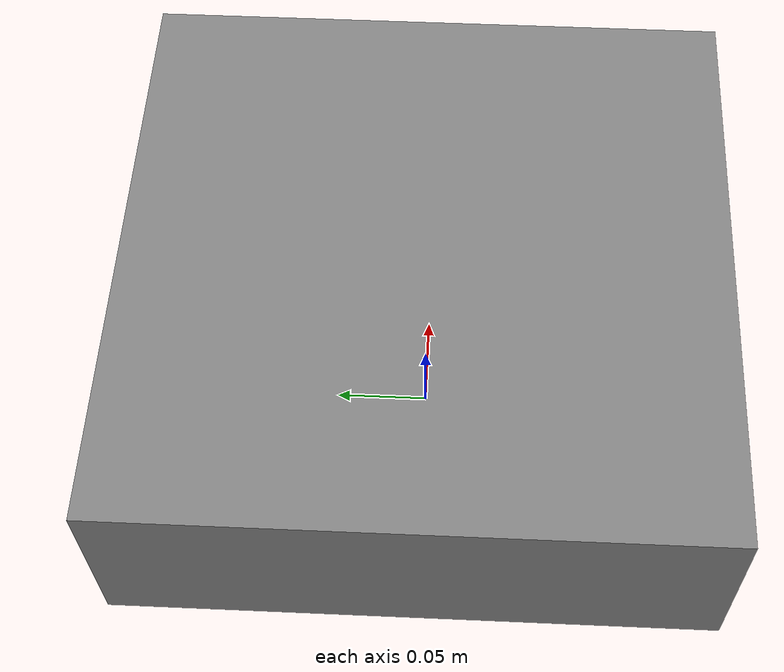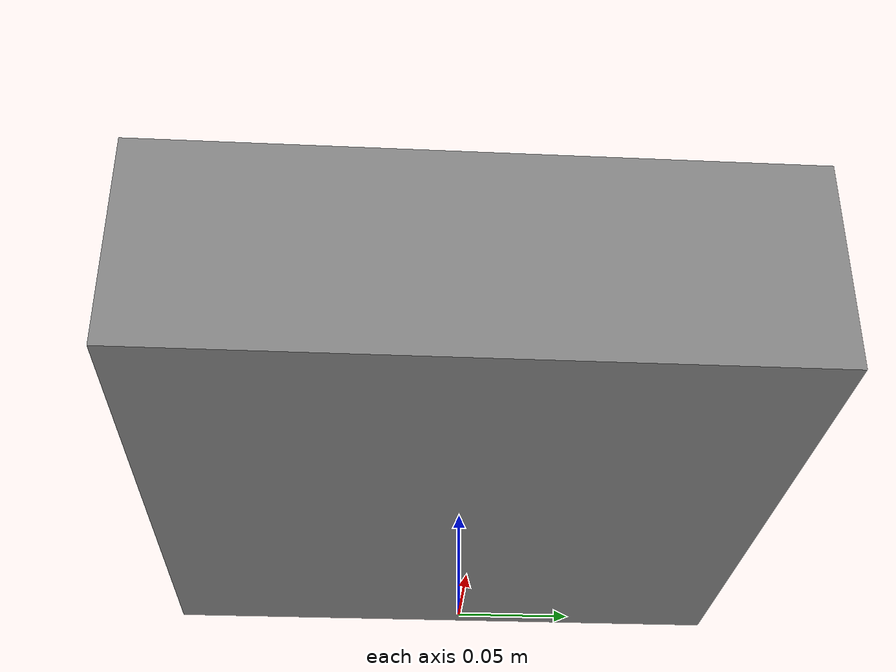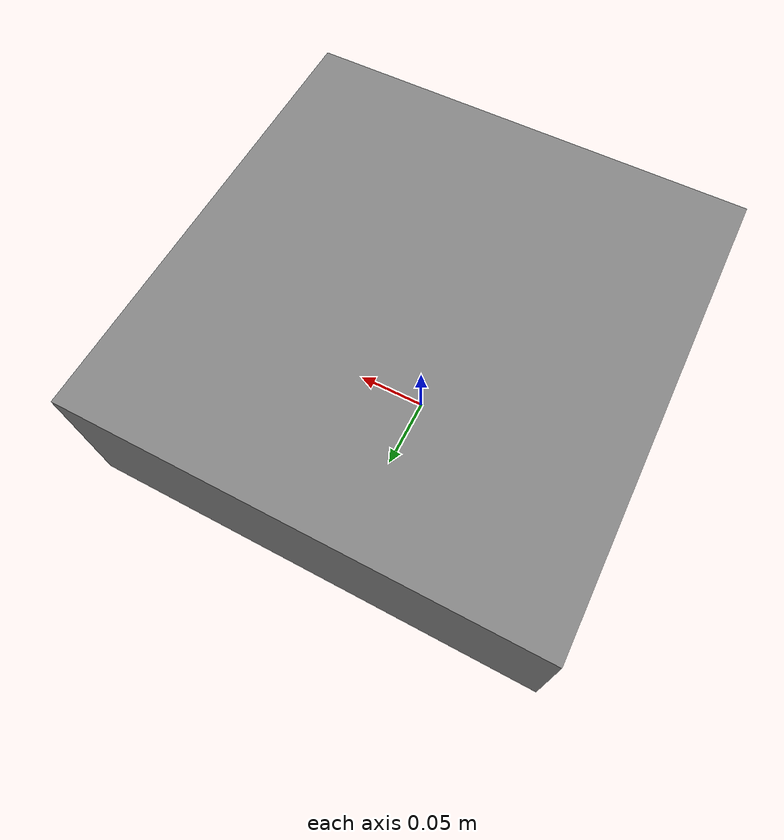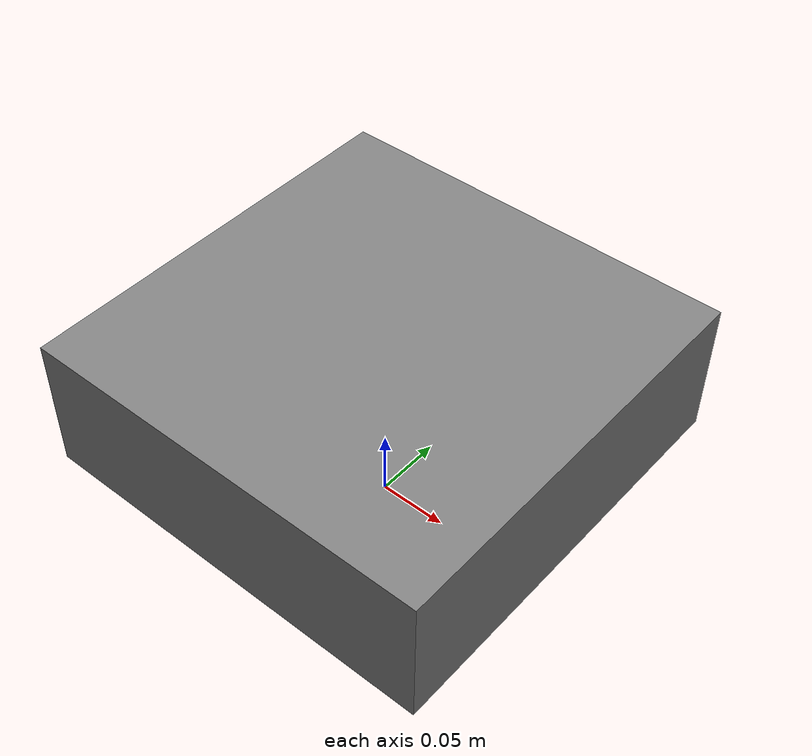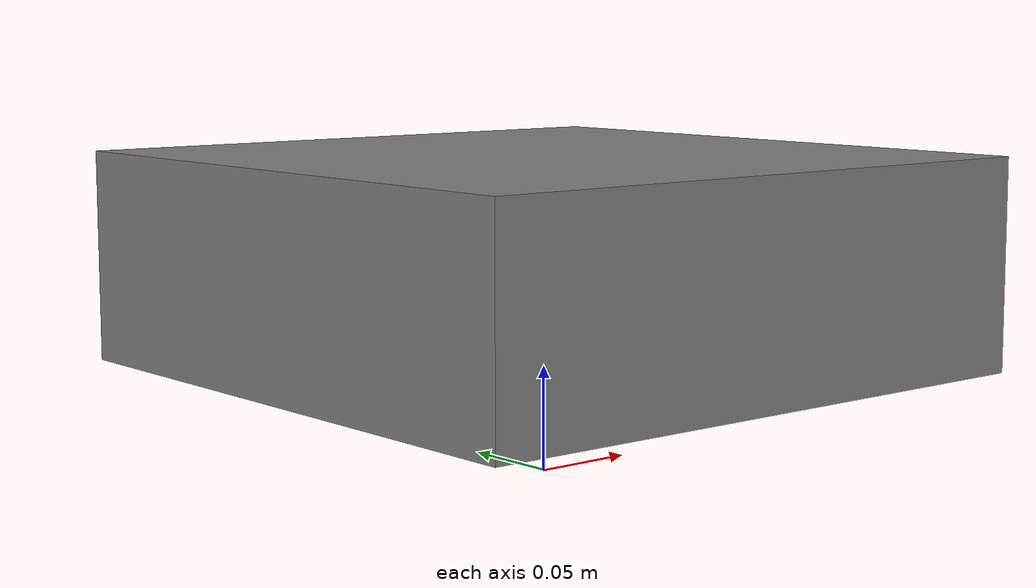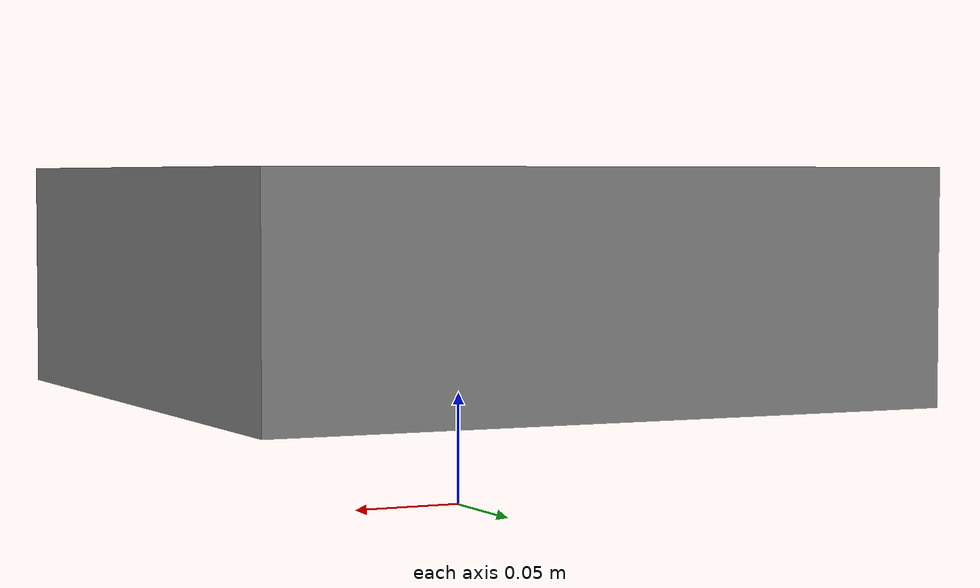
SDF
<?xml version="1.0" ?>
<sdf version="1.9">

  <sensor name="imu_sensor" type="imu">
    <!--
      Basic sensor settings
    -->
    <always_on>true</always_on>
    <update_rate>100</update_rate>  <!-- 100 Hz typical for IMU -->
    <visualize>false</visualize>
    <topic>imu</topic>

    <imu>
      <orientation_reference_frame>
        <localization>CUSTOM</localization>
        <custom_rpy>0 0 0</custom_rpy>
        <grav_dir_x>0</grav_dir_x>
        <grav_dir_y>0</grav_dir_y>
        <grav_dir_z>-1</grav_dir_z>
      </orientation_reference_frame>

      <linear_acceleration>
        <x>
          <noise type="gaussian">
            <mean>0.0</mean>
            <stddev>0.05</stddev>  <!-- m/s² -->
            <!--
              bias_mean: Constant offset (sensor calibration error)
              bias_stddev: Drift in bias over time (Allan variance)
            -->
            <bias_mean>0.0001</bias_mean>
            <bias_stddev>0.0001</bias_stddev>
          </noise>
        </x>
        <y>
          <noise type="gaussian">
            <mean>0.0</mean>
            <stddev>0.05</stddev>
            <bias_mean>0.0001</bias_mean>
            <bias_stddev>0.0001</bias_stddev>
          </noise>
        </y>
        <z>
          <noise type="gaussian">
            <mean>0.0</mean>
            <stddev>0.05</stddev>
            <bias_mean>0.0001</bias_mean>
            <bias_stddev>0.0001</bias_stddev>
          </noise>
        </z>
      </linear_acceleration>

      <angular_velocity>
        <x>
          <noise type="gaussian">
            <mean>0.0</mean>
            <stddev>0.01</stddev>  <!-- rad/s -->
            <bias_mean>0.0001</bias_mean>
            <bias_stddev>0.0001</bias_stddev>
          </noise>
        </x>
        <y>
          <noise type="gaussian">
            <mean>0.0</mean>
            <stddev>0.01</stddev>
            <bias_mean>0.0001</bias_mean>
            <bias_stddev>0.0001</bias_stddev>
          </noise>
        </y>
        <z>
          <noise type="gaussian">
            <mean>0.0</mean>
            <stddev>0.01</stddev>
            <bias_mean>0.0001</bias_mean>
            <bias_stddev>0.0001</bias_stddev>
          </noise>
        </z>
      </angular_velocity>

      <enable_orientation>true</enable_orientation>
    </imu>
  </sensor>

  <model name="imu_example_robot">
    <link name="base_with_imu">
      <pose>0 0 0.1 0 0 0</pose>

      <inertial>
        <mass>5.0</mass>
        <inertia>
          <ixx>0.05</ixx>
          <ixy>0</ixy>
          <ixz>0</ixz>
          <iyy>0.05</iyy>
          <iyz>0</iyz>
          <izz>0.05</izz>
        </inertia>
      </inertial>

      <visual name="base_visual">
        <geometry>
          <box><size>0.3 0.3 0.1</size></box>
        </geometry>
        <material>
          <diffuse>0.5 0.5 0.5 1</diffuse>
        </material>
      </visual>

      <collision name="base_collision">
        <geometry>
          <box><size>0.3 0.3 0.1</size></box>
        </geometry>
      </collision>

      <sensor name="imu_sensor" type="imu">
        <always_on>true</always_on>
        <update_rate>100</update_rate>
        <topic>imu</topic>

        <imu>
          <orientation_reference_frame>
            <localization>CUSTOM</localization>
            <grav_dir_x>0</grav_dir_x>
            <grav_dir_y>0</grav_dir_y>
            <grav_dir_z>-1</grav_dir_z>
          </orientation_reference_frame>

          <linear_acceleration>
            <x><noise type="gaussian"><mean>0</mean><stddev>0.05</stddev></noise></x>
            <y><noise type="gaussian"><mean>0</mean><stddev>0.05</stddev></noise></y>
            <z><noise type="gaussian"><mean>0</mean><stddev>0.05</stddev></noise></z>
          </linear_acceleration>

          <angular_velocity>
            <x><noise type="gaussian"><mean>0</mean><stddev>0.01</stddev></noise></x>
            <y><noise type="gaussian"><mean>0</mean><stddev>0.01</stddev></noise></y>
            <z><noise type="gaussian"><mean>0</mean><stddev>0.01</stddev></noise></z>
          </angular_velocity>

          <enable_orientation>true</enable_orientation>
        </imu>
      </sensor>
    </link>
  </model>

</sdf>
